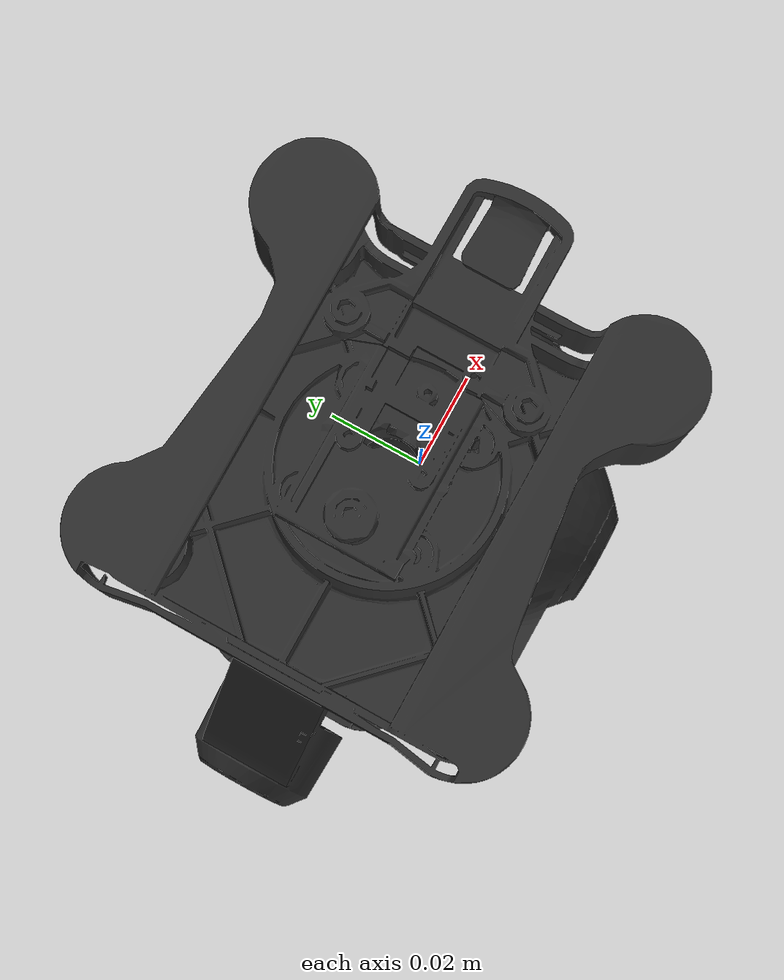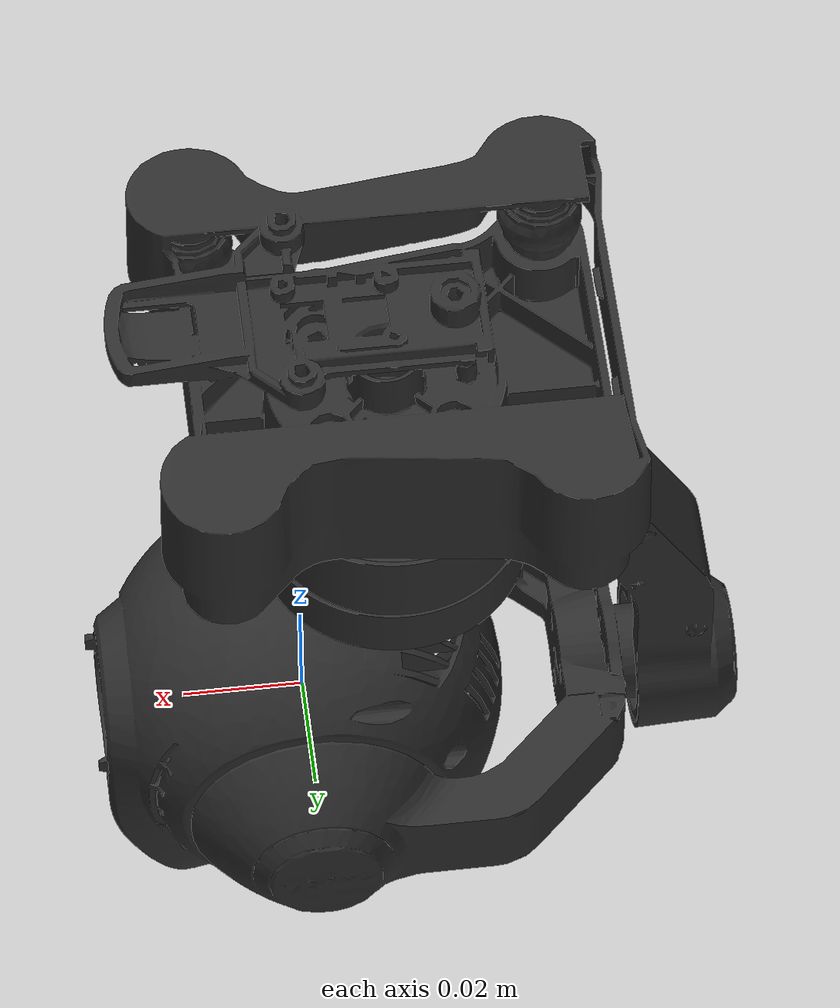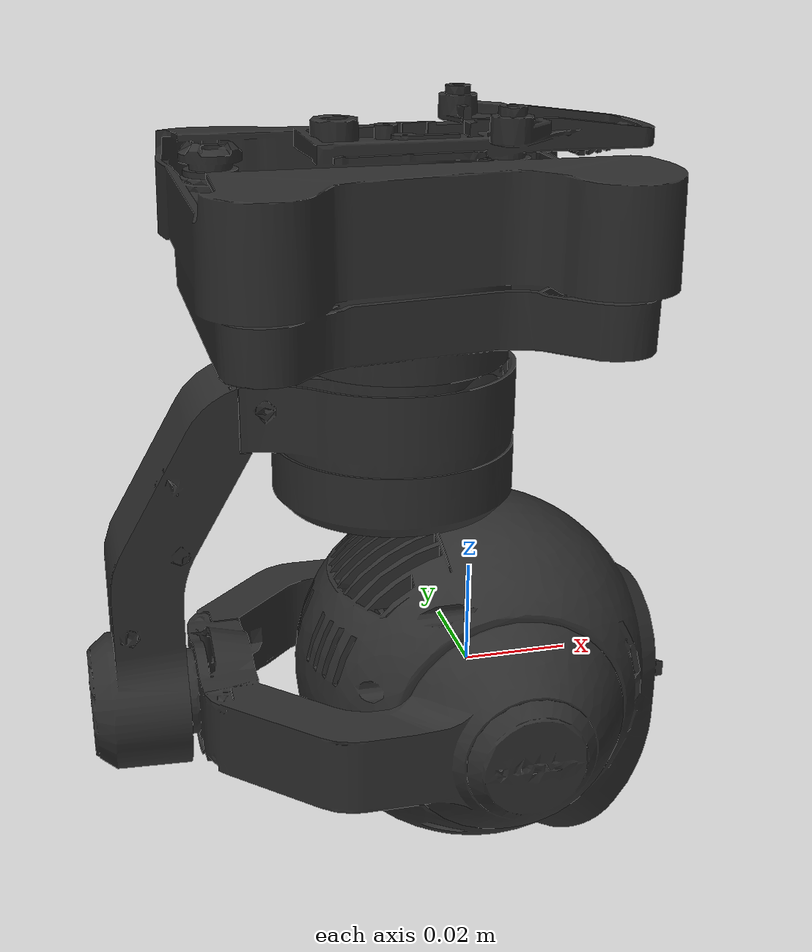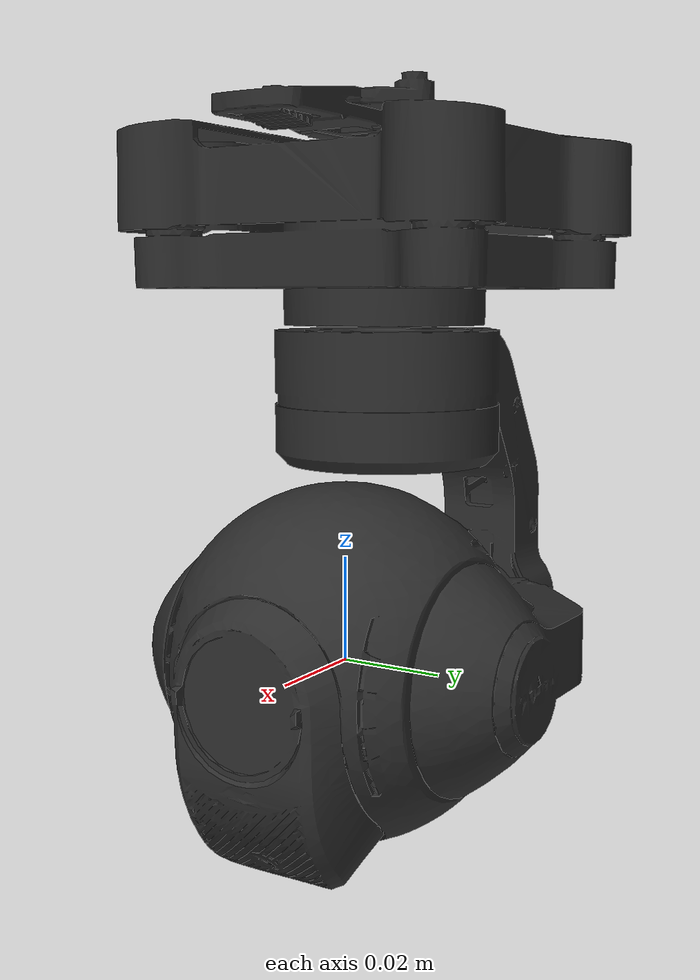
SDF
<?xml version='1.0' encoding='UTF-8'?>
<sdf version="1.9">
  <model name="gimbal">
    <self_collide>false</self_collide>
    <static>false</static>

    <link name="cgo3_mount_link">
      <inertial>
        <pose>-0.02552 0 -0.08136 0 0 0</pose>
        <mass>0.1</mass>
        <inertia>
          <ixx>0.001</ixx>
          <ixy>0</ixy>
          <ixz>0</ixz>
          <iyy>0.001</iyy>
          <iyz>0</iyz>
          <izz>0.001</izz>
        </inertia>
      </inertial>
      <visual name="cgo3_mount_visual">
        <geometry>
          <mesh>
            <scale>0.001 0.001 0.001</scale>
            <uri>model://gimbal/meshes/cgo3_mount_remeshed_v1.stl</uri>
          </mesh>
        </geometry>
        <material>
          <ambient>.175 .175 .175  1.0</ambient>
          <diffuse>.175 .175 .175  1.0</diffuse>
          <specular>.175 .175 .175  1.0</specular>
        </material>
      </visual>
    </link>

    <link name="cgo3_vertical_arm_link">
      <inertial>
        <pose>0 0 -0.1283 0 0 0</pose>
        <mass>0.1</mass>
        <inertia>
          <ixx>0.001</ixx>
          <ixy>0</ixy>
          <ixz>0</ixz>
          <iyy>0.001</iyy>
          <iyz>0</iyz>
          <izz>0.001</izz>
        </inertia>
      </inertial>
      <visual name="cgo3_vertical_arm_visual">
        <geometry>
          <mesh>
            <scale>0.001 0.001 0.001</scale>
            <uri>model://gimbal/meshes/cgo3_vertical_arm_remeshed_v1.stl</uri>
          </mesh>
        </geometry>
        <material>
          <ambient>.175 .175 .175  1.0</ambient>
          <diffuse>.175 .175 .175  1.0</diffuse>
          <specular>.175 .175 .175  1.0</specular>
        </material>
      </visual>
    </link>

    <joint name="cgo3_vertical_arm_joint" type="revolute">
      <child>cgo3_vertical_arm_link</child>
      <parent>cgo3_mount_link</parent>
      <pose>-0.02552 0 0 0 0 0</pose>
      <axis>
        <xyz>0 0 -1</xyz>
        <limit>
          <lower>-1e+16</lower>
          <upper>1e+16</upper>
          <effort>100</effort>
          <velocity>-1</velocity>
        </limit>
        <dynamics>
          <damping>0.1</damping>
        </dynamics>
      </axis>
      <physics>
        <ode>
          <implicit_spring_damper>1</implicit_spring_damper>
          <limit>
            <cfm>0.1</cfm>
            <erp>0.2</erp>
          </limit>
        </ode>
      </physics>
    </joint>

    <link name="cgo3_horizontal_arm_link">
      <inertial>
        <pose>-0.0213 0 -0.162 0 0 0</pose>
        <mass>0.1</mass>
        <inertia>
          <ixx>0.001</ixx>
          <ixy>0</ixy>
          <ixz>0</ixz>
          <iyy>0.001</iyy>
          <iyz>0</iyz>
          <izz>0.001</izz>
        </inertia>
      </inertial>
      <visual name="cgo3_horizontal_arm_visual">
        <geometry>
          <mesh>
            <scale>0.001 0.001 0.001</scale>
            <uri>model://gimbal/meshes/cgo3_horizontal_arm_remeshed_v1.stl</uri>
          </mesh>
        </geometry>
        <material>
          <ambient>.175 .175 .175  1.0</ambient>
          <diffuse>.175 .175 .175  1.0</diffuse>
          <specular>.175 .175 .175  1.0</specular>
        </material>
      </visual>
    </link>

    <joint name="cgo3_horizontal_arm_joint" type="revolute">
      <child>cgo3_horizontal_arm_link</child>
      <parent>cgo3_vertical_arm_link</parent>
      <pose>0 0 -0.1619 0 0 0</pose>
      <axis>
        <xyz>-1 0 0</xyz>
        <limit>
          <lower>-0.785398</lower>
          <upper>0.785398</upper>
          <effort>100</effort>
          <velocity>-1</velocity>
        </limit>
        <dynamics>
          <damping>0.1</damping>
        </dynamics>
      </axis>
      <physics>
        <ode>
          <implicit_spring_damper>1</implicit_spring_damper>
          <limit>
            <cfm>0.1</cfm>
            <erp>0.2</erp>
          </limit>
        </ode>
      </physics>
    </joint>

    <link name="camera_link">
      <inertial>
        <pose>-0.0412 0 -0.162 0 0 0</pose>
        <mass>0.1</mass>
        <inertia>
          <ixx>0.001</ixx>
          <ixy>0</ixy>
          <ixz>0</ixz>
          <iyy>0.001</iyy>
          <iyz>0</iyz>
          <izz>0.001</izz>
        </inertia>
      </inertial>
      <collision name="cgo3_camera_collision">
        <pose>-0.0412 0 -0.162 0 0 0</pose>
        <geometry>
          <sphere>
            <radius>0.035</radius>
          </sphere>
        </geometry>
        <surface>
          <friction>
            <ode>
              <mu>1</mu>
              <mu2>1</mu2>
            </ode>
          </friction>
          <contact>
            <ode>
              <kp>1e+8</kp>
              <kd>1</kd>
              <max_vel>0.01</max_vel>
              <min_depth>0.001</min_depth>
            </ode>
          </contact>
        </surface>
      </collision>
      <visual name="cgo3_camera_visual">
        <geometry>
          <mesh>
            <scale>0.001 0.001 0.001</scale>
            <uri>model://gimbal/meshes/cgo3_camera_remeshed_v1.stl</uri>
          </mesh>
        </geometry>
        <material>
          <ambient>.175 .175 .175  1.0</ambient>
          <diffuse>.175 .175 .175  1.0</diffuse>
          <specular>.175 .175 .175  1.0</specular>
        </material>
      </visual>

      <sensor name="camera_imu" type="imu">
        <always_on>1</always_on>
        <update_rate>250</update_rate>
        <pose>-0.0412 0 -0.162 0 0 3.14</pose>
        <imu>
          <angular_velocity>
            <x>
              <noise type="gaussian">
                <mean>0</mean>
                <stddev>0.00018665</stddev>
                <dynamic_bias_stddev>3.8785e-05</dynamic_bias_stddev>
                <dynamic_bias_correlation_time>1000</dynamic_bias_correlation_time>
              </noise>
            </x>
            <y>
              <noise type="gaussian">
                <mean>0</mean>
                <stddev>0.00018665</stddev>
                <dynamic_bias_stddev>3.8785e-05</dynamic_bias_stddev>
                <dynamic_bias_correlation_time>1000</dynamic_bias_correlation_time>
              </noise>
            </y>
            <z>
              <noise type="gaussian">
                <mean>0</mean>
                <stddev>0.00018665</stddev>
                <dynamic_bias_stddev>3.8785e-05</dynamic_bias_stddev>
                <dynamic_bias_correlation_time>1000</dynamic_bias_correlation_time>
              </noise>
            </z>
          </angular_velocity>
          <linear_acceleration>
            <x>
              <noise type="gaussian">
                <mean>0</mean>
                <stddev>0.00186</stddev>
                <dynamic_bias_stddev>0.006</dynamic_bias_stddev>
                <dynamic_bias_correlation_time>300</dynamic_bias_correlation_time>
              </noise>
            </x>
            <y>
              <noise type="gaussian">
                <mean>0</mean>
                <stddev>0.00186</stddev>
                <dynamic_bias_stddev>0.006</dynamic_bias_stddev>
                <dynamic_bias_correlation_time>300</dynamic_bias_correlation_time>
              </noise>
            </y>
            <z>
              <noise type="gaussian">
                <mean>0</mean>
                <stddev>0.00186</stddev>
                <dynamic_bias_stddev>0.006</dynamic_bias_stddev>
                <dynamic_bias_correlation_time>300</dynamic_bias_correlation_time>
              </noise>
            </z>
          </linear_acceleration>
        </imu>
      </sensor>

      <sensor name="camera" type="camera">
        <pose>-0.074 0 -0.162 0 0 3.14</pose>
        <camera>
          <horizontal_fov>2.0</horizontal_fov>
          <image>
            <format>R8G8B8</format>
            <width>1920</width>
            <height>1080</height>
          </image>
          <clip>
            <near>0.05</near>
            <far>15000</far>
          </clip>
        </camera>
        <always_on>1</always_on>
        <update_rate>30</update_rate>
        <visualize>true</visualize>
        <topic>camera</topic>
      </sensor>

      <sensor name="visible_2d" type="boundingbox_camera">
        <topic>boxes_visible_2d</topic>
        <pose>-0.074 0 -0.162 0 0 3.14</pose>
        <camera>
          <box_type>visible_2d</box_type>
          <horizontal_fov>2.0</horizontal_fov>
          <image>
            <width>1920</width>
            <height>1080</height>
          </image>
          <clip>
            <near>0.05</near>
            <far>15000</far>
          </clip>
        </camera>
        <always_on>1</always_on>
        <update_rate>30</update_rate>
        <visualize>true</visualize>
      </sensor>

      <sensor name="3d" type="boundingbox_camera">
        <topic>boxes_3d</topic>
        <pose>-0.074 0 -0.162 0 0 3.14</pose>
        <camera>
          <box_type>3d</box_type>
          <horizontal_fov>2.0</horizontal_fov>
          <image>
            <width>1920</width>
            <height>1080</height>
          </image>
          <clip>
            <near>0.05</near>
            <far>15000</far>
          </clip>
        </camera>
        <always_on>1</always_on>
        <update_rate>30</update_rate>
        <visualize>true</visualize>
      </sensor>
    </link>

    <joint name="cgo3_camera_joint" type="revolute">
      <child>camera_link</child>
      <parent>cgo3_horizontal_arm_link</parent>
      <pose>-0.0412 0 -0.162 0 0 0</pose>
      <axis>
        <xyz>0 1 0</xyz>
        <limit>
          <lower>-2.35619</lower>
          <upper>0.7854</upper>
          <effort>100</effort>
          <velocity>-1</velocity>
        </limit>
        <dynamics>
          <damping>0.1</damping>
        </dynamics>
      </axis>
      <physics>
        <ode>
          <implicit_spring_damper>1</implicit_spring_damper>
          <limit>
            <cfm>0.1</cfm>
            <erp>0.2</erp>
          </limit>
        </ode>
      </physics>
    </joint>

    <plugin filename="gz-sim-joint-position-controller-system" name="gz::sim::systems::JointPositionController">
      <joint_name>cgo3_horizontal_arm_joint</joint_name>
      <sub_topic>command/gimbal_roll</sub_topic>
      <p_gain>0.8</p_gain>
      <i_gain>0.035</i_gain>
      <d_gain>0.02</d_gain>
      <i_max>0</i_max>
      <i_min>0</i_min>
      <cmd_max>4.0</cmd_max>
      <cmd_min>-4.0</cmd_min>
      <use_velocity_commands>true</use_velocity_commands>
    </plugin>

    <plugin filename="gz-sim-joint-position-controller-system" name="gz::sim::systems::JointPositionController">
      <joint_name>cgo3_camera_joint</joint_name>
      <sub_topic>command/gimbal_pitch</sub_topic>
      <p_gain>0.8</p_gain>
      <i_gain>0.01245</i_gain>
      <d_gain>0.015</d_gain>
      <i_max>0</i_max>
      <i_min>0</i_min>
      <cmd_max>4.0</cmd_max>
      <cmd_min>-4.0</cmd_min>
      <use_velocity_commands>true</use_velocity_commands>
    </plugin>

    <plugin filename="gz-sim-joint-position-controller-system" name="gz::sim::systems::JointPositionController">
      <joint_name>cgo3_vertical_arm_joint</joint_name>
      <sub_topic>command/gimbal_yaw</sub_topic>
      <p_gain>0.3</p_gain>
      <i_gain>0.01245</i_gain>
      <d_gain>0.015</d_gain>
      <i_max>0</i_max>
      <i_min>0</i_min>
      <cmd_max>4.0</cmd_max>
      <cmd_min>-4.0</cmd_min>
      <use_velocity_commands>true</use_velocity_commands>
    </plugin>

    <plugin filename="libCameraTransPlugin.so" name="gazebo_sim_plugin::CameraTransPlugin">
      <pub_mat_topic>/camera/transform_matrix</pub_mat_topic>
      <pub_pose_topic>/camera/pose</pub_pose_topic>
      <pub_mount_pose_topic>/mount/pose</pub_mount_pose_topic>
      <pos_mag>0.0</pos_mag>
      <rot_mag>0.0</rot_mag>
    </plugin>

  </model>
</sdf>
